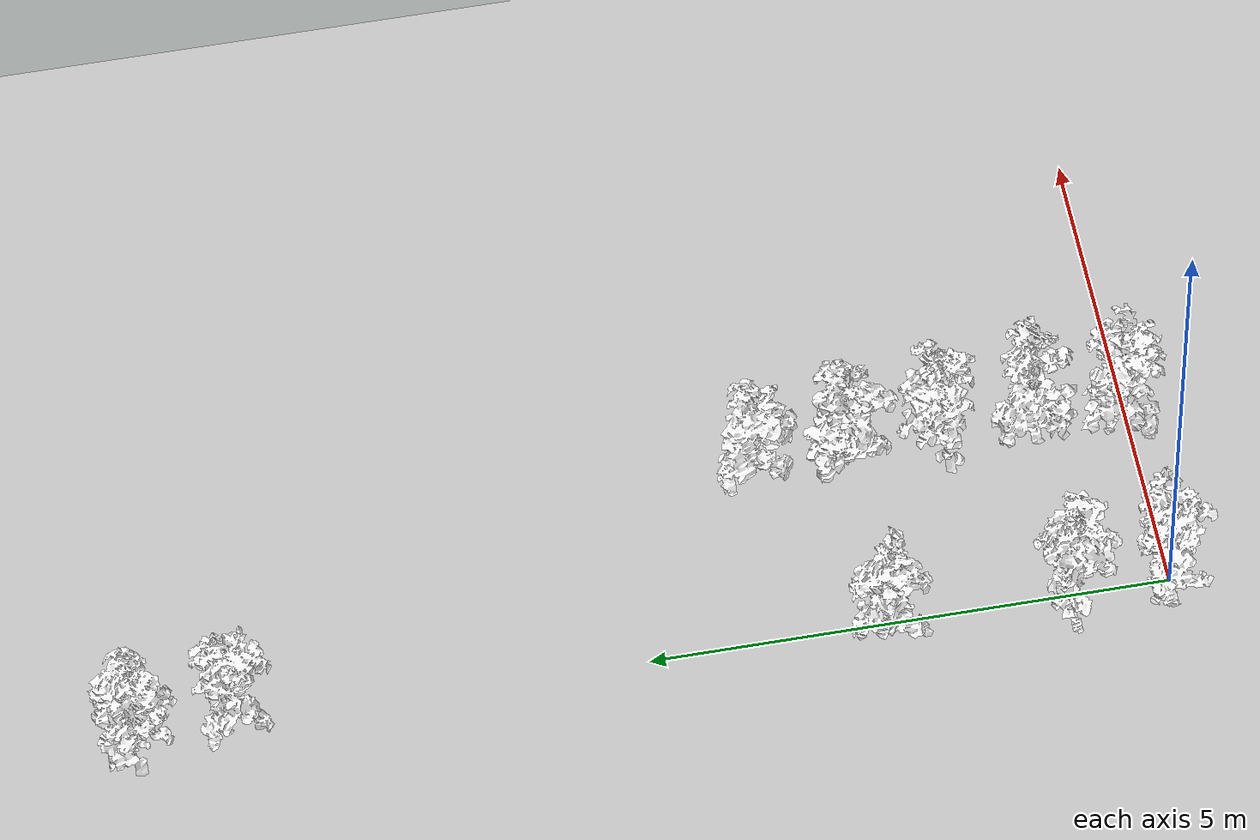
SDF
<sdf version="1.7">
 <world name="field">
  <physics name="1ms" type="ignored">
   <max_step_size>0.001</max_step_size>
   <real_time_factor>1</real_time_factor>
   <real_time_update_rate>1000</real_time_update_rate>
  </physics>
  <plugin name="ignition::gazebo::systems::Physics" filename="ignition-gazebo-physics-system"/>
  <plugin name="ignition::gazebo::systems::UserCommands" filename="ignition-gazebo-user-commands-system"/>
  <plugin name="ignition::gazebo::systems::SceneBroadcaster" filename="ignition-gazebo-scene-broadcaster-system"/>
  <plugin filename="ignition-gazebo-sensors-system" name="ignition::gazebo::systems::Sensors">
   <render_engine>ogre2</render_engine>
  </plugin>
  <scene><ambient>1 1 1 1</ambient><background>0.8 0.8 0.8 1</background><shadows>1</shadows></scene>
  <light name="sun" type="directional">
   <pose>0 0 10 0 -0 0</pose>
   <diffuse>0.8 0.8 0.8 1</diffuse>
   <specular>0.8 0.8 0.8 1</specular>
   <attenuation>
    <range>1000</range>
    <constant>0.9</constant>
    <linear>0.01</linear>
    <quadratic>0.001</quadratic>
   </attenuation>
   <direction>-0.5 0.1 -0.9</direction>
   <spot><inner_angle>0</inner_angle><outer_angle>0</outer_angle><falloff>0</falloff></spot>
  </light>
  <gravity>0 0 -9.8</gravity>
  <magnetic_field>6e-06 2.3e-05 -4.2e-05</magnetic_field>
  <atmosphere type="adiabatic"/>
  <include><uri>ground</uri><name>ground</name><pose>5.0 5.0 0 0 0 0</pose></include>
  <include><uri>tomato_0</uri><name>tomato_0</name></include>
  <include><uri>tomato_1</uri><name>tomato_1</name><pose>0.0 0.9 0 0 0 0</pose></include>
  <include><uri>tomato_3</uri><name>tomato_3</name><pose>0.0 2.7 0 0 0 0</pose></include>
  <include><uri>tomato_10</uri><name>tomato_10</name><pose>0.0 9.0 0 0 0 0</pose></include>
  <include><uri>tomato_11</uri><name>tomato_11</name><pose>0.0 9.9 0 0 0 0</pose></include>
  <include><uri>tomato_12</uri><name>tomato_12</name><pose>2.0 0.0 0 0 0 0</pose></include>
  <include><uri>tomato_13</uri><name>tomato_13</name><pose>2.0 0.9 0 0 0 0</pose></include>
  <include><uri>tomato_14</uri><name>tomato_14</name><pose>2.0 1.8 0 0 0 0</pose></include>
  <include><uri>tomato_15</uri><name>tomato_15</name><pose>2.0 2.7 0 0 0 0</pose></include>
  <include><uri>tomato_16</uri><name>tomato_16</name><pose>2.0 3.6 0 0 0 0</pose></include>
 </world>
</sdf>

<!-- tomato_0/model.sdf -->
<sdf version="1.6">
  <model name="tomato_0">
    <static>true</static>
    <link name="link">
      <collision name="collision">
        <geometry>
          <box>
            <size>.1 .1 1</size>
          </box>
        </geometry>
      </collision>
      <visual name="branch">
        <geometry>
          <mesh>
            <uri>file://tomato_0/meshes/tomato.dae</uri>
            <submesh>
              <name>Branch1</name>
            </submesh>
          </mesh>
        </geometry>
        <material>
          <diffuse>1.0 1.0 1.0</diffuse>
          <pbr>
            <metal>
              <albedo_map>file://tomato_0/materials/textures/AG15brn1.png</albedo_map>
            </metal>
          </pbr>
        </material>
      </visual>
      <visual name="leaf1">
        <geometry>
          <mesh>
            <uri>file://tomato_0/meshes/tomato.dae</uri>
            <submesh>
              <name>Leaf1</name>
            </submesh>
          </mesh>
        </geometry>
        <material>
          <diffuse>1.0 1.0 1.0</diffuse>
          <pbr>
            <metal>
              <albedo_map>file://tomato_0/materials/textures/AG15lef1.png</albedo_map>
            </metal>
          </pbr>
        </material>
      </visual>
      <visual name="leaf2">
        <geometry>
          <mesh>
            <uri>file://tomato_0/meshes/tomato.dae</uri>
            <submesh>
              <name>Leaf2</name>
            </submesh>
          </mesh>
        </geometry>
        <material>
          <diffuse>1.0 1.0 1.0</diffuse>
          <pbr>
            <metal>
              <albedo_map>file://tomato_0/materials/textures/AG15lef2.png</albedo_map>
            </metal>
          </pbr>
        </material>
      </visual>
      <visual name="fruit1">
        <geometry>
          <mesh>
            <uri>file://tomato_0/meshes/tomato.dae</uri>
            <submesh>
              <name>Fruit1</name>
            </submesh>
          </mesh>
        </geometry>
        <material>
          <diffuse>1.0 1.0 1.0</diffuse>
          <pbr>
            <metal>
              <albedo_map>file://tomato_0/materials/textures/AG15frt1.png</albedo_map>
            </metal>
          </pbr>
        </material>
      </visual>
      <visual name="fruit2">
        <geometry>
          <mesh>
            <uri>file://tomato_0/meshes/tomato.dae</uri>
            <submesh>
              <name>Fruit2</name>
            </submesh>
          </mesh>
        </geometry>
        <material>
          <diffuse>1.0 1.0 1.0</diffuse>
          <pbr>
            <metal>
              <albedo_map>file://tomato_0/materials/textures/AG15frt2.png</albedo_map>
            </metal>
          </pbr>
        </material>
      </visual>
      <visual name="fruit3">
        <geometry>
          <mesh>
            <uri>file://tomato_0/meshes/tomato.dae</uri>
            <submesh>
              <name>Fruit3</name>
            </submesh>
          </mesh>
        </geometry>
        <material>
          <diffuse>1.0 1.0 1.0</diffuse>
          <pbr>
            <metal>
              <albedo_map>file://tomato_0/materials/textures/AG15frt3.png</albedo_map>
            </metal>
          </pbr>
        </material>
      </visual>
      <visual name="fruit4">
        <geometry>
          <mesh>
            <uri>file://tomato_0/meshes/tomato.dae</uri>
            <submesh>
              <name>Fruit4</name>
            </submesh>
          </mesh>
        </geometry>
        <material>
          <diffuse>1.0 1.0 1.0</diffuse>
          <pbr>
            <metal>
              <albedo_map>file://tomato_0/materials/textures/AG15frt4.png</albedo_map>
            </metal>
          </pbr>
        </material>
      </visual>
      <visual name="blossom1">
        <geometry>
          <mesh>
            <uri>file://tomato_0/meshes/tomato.dae</uri>
            <submesh>
              <name>Blossom1</name>
            </submesh>
          </mesh>
        </geometry>
        <material>
          <diffuse>1.0 1.0 1.0</diffuse>
          <pbr>
            <metal>
              <albedo_map>file://tomato_0/materials/textures/AG15blo1.png</albedo_map>
            </metal>
          </pbr>
        </material>
      </visual>
      <visual name="blossom2">
        <geometry>
          <mesh>
            <uri>file://tomato_0/meshes/tomato.dae</uri>
            <submesh>
              <name>Blossom2</name>
            </submesh>
          </mesh>
        </geometry>
        <material>
          <diffuse>1.0 1.0 1.0</diffuse>
          <pbr>
            <metal>
              <albedo_map>file://tomato_0/materials/textures/AG15blo2.png</albedo_map>
            </metal>
          </pbr>
        </material>
      </visual>
      <visual name="blossom3">
        <geometry>
          <mesh>
            <uri>file://tomato_0/meshes/tomato.dae</uri>
            <submesh>
              <name>Blossom3</name>
            </submesh>
          </mesh>
        </geometry>
        <material>
          <diffuse>1.0 1.0 1.0</diffuse>
          <pbr>
            <metal>
              <albedo_map>file://tomato_0/materials/textures/AG15blo3.png</albedo_map>
            </metal>
          </pbr>
        </material>
      </visual>
    </link>
  </model>
</sdf>

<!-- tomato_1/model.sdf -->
<sdf version="1.6">
  <model name="tomato_1">
    <static>true</static>
    <link name="link">
      <collision name="collision">
        <geometry>
          <box>
            <size>.1 .1 1</size>
          </box>
        </geometry>
      </collision>
      <visual name="branch">
        <geometry>
          <mesh>
            <uri>file://tomato_1/meshes/tomato.dae</uri>
            <submesh>
              <name>Branch1</name>
            </submesh>
          </mesh>
        </geometry>
        <material>
          <diffuse>1.0 1.0 1.0</diffuse>
          <pbr>
            <metal>
              <albedo_map>file://tomato_1/materials/textures/AG15brn1.png</albedo_map>
            </metal>
          </pbr>
        </material>
      </visual>
      <visual name="leaf1">
        <geometry>
          <mesh>
            <uri>file://tomato_1/meshes/tomato.dae</uri>
            <submesh>
              <name>Leaf1</name>
            </submesh>
          </mesh>
        </geometry>
        <material>
          <diffuse>1.0 1.0 1.0</diffuse>
          <pbr>
            <metal>
              <albedo_map>file://tomato_1/materials/textures/AG15lef1.png</albedo_map>
            </metal>
          </pbr>
        </material>
      </visual>
      <visual name="leaf2">
        <geometry>
          <mesh>
            <uri>file://tomato_1/meshes/tomato.dae</uri>
            <submesh>
              <name>Leaf2</name>
            </submesh>
          </mesh>
        </geometry>
        <material>
          <diffuse>1.0 1.0 1.0</diffuse>
          <pbr>
            <metal>
              <albedo_map>file://tomato_1/materials/textures/AG15lef2.png</albedo_map>
            </metal>
          </pbr>
        </material>
      </visual>
      <visual name="fruit1">
        <geometry>
          <mesh>
            <uri>file://tomato_1/meshes/tomato.dae</uri>
            <submesh>
              <name>Fruit1</name>
            </submesh>
          </mesh>
        </geometry>
        <material>
          <diffuse>1.0 1.0 1.0</diffuse>
          <pbr>
            <metal>
              <albedo_map>file://tomato_1/materials/textures/AG15frt1.png</albedo_map>
            </metal>
          </pbr>
        </material>
      </visual>
      <visual name="fruit2">
        <geometry>
          <mesh>
            <uri>file://tomato_1/meshes/tomato.dae</uri>
            <submesh>
              <name>Fruit2</name>
            </submesh>
          </mesh>
        </geometry>
        <material>
          <diffuse>1.0 1.0 1.0</diffuse>
          <pbr>
            <metal>
              <albedo_map>file://tomato_1/materials/textures/AG15frt2.png</albedo_map>
            </metal>
          </pbr>
        </material>
      </visual>
      <visual name="fruit3">
        <geometry>
          <mesh>
            <uri>file://tomato_1/meshes/tomato.dae</uri>
            <submesh>
              <name>Fruit3</name>
            </submesh>
          </mesh>
        </geometry>
        <material>
          <diffuse>1.0 1.0 1.0</diffuse>
          <pbr>
            <metal>
              <albedo_map>file://tomato_1/materials/textures/AG15frt3.png</albedo_map>
            </metal>
          </pbr>
        </material>
      </visual>
      <visual name="fruit4">
        <geometry>
          <mesh>
            <uri>file://tomato_1/meshes/tomato.dae</uri>
            <submesh>
              <name>Fruit4</name>
            </submesh>
          </mesh>
        </geometry>
        <material>
          <diffuse>1.0 1.0 1.0</diffuse>
          <pbr>
            <metal>
              <albedo_map>file://tomato_1/materials/textures/AG15frt4.png</albedo_map>
            </metal>
          </pbr>
        </material>
      </visual>
      <visual name="blossom1">
        <geometry>
          <mesh>
            <uri>file://tomato_1/meshes/tomato.dae</uri>
            <submesh>
              <name>Blossom1</name>
            </submesh>
          </mesh>
        </geometry>
        <material>
          <diffuse>1.0 1.0 1.0</diffuse>
          <pbr>
            <metal>
              <albedo_map>file://tomato_1/materials/textures/AG15blo1.png</albedo_map>
            </metal>
          </pbr>
        </material>
      </visual>
      <visual name="blossom2">
        <geometry>
          <mesh>
            <uri>file://tomato_1/meshes/tomato.dae</uri>
            <submesh>
              <name>Blossom2</name>
            </submesh>
          </mesh>
        </geometry>
        <material>
          <diffuse>1.0 1.0 1.0</diffuse>
          <pbr>
            <metal>
              <albedo_map>file://tomato_1/materials/textures/AG15blo2.png</albedo_map>
            </metal>
          </pbr>
        </material>
      </visual>
      <visual name="blossom3">
        <geometry>
          <mesh>
            <uri>file://tomato_1/meshes/tomato.dae</uri>
            <submesh>
              <name>Blossom3</name>
            </submesh>
          </mesh>
        </geometry>
        <material>
          <diffuse>1.0 1.0 1.0</diffuse>
          <pbr>
            <metal>
              <albedo_map>file://tomato_1/materials/textures/AG15blo3.png</albedo_map>
            </metal>
          </pbr>
        </material>
      </visual>
    </link>
  </model>
</sdf>

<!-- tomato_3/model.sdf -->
<sdf version="1.6">
  <model name="tomato_3">
    <static>true</static>
    <link name="link">
      <collision name="collision">
        <geometry>
          <box>
            <size>.1 .1 1</size>
          </box>
        </geometry>
      </collision>
      <visual name="branch">
        <geometry>
          <mesh>
            <uri>file://tomato_3/meshes/tomato.dae</uri>
            <submesh>
              <name>Branch1</name>
            </submesh>
          </mesh>
        </geometry>
        <material>
          <diffuse>1.0 1.0 1.0</diffuse>
          <pbr>
            <metal>
              <albedo_map>file://tomato_3/materials/textures/AG15brn1.png</albedo_map>
            </metal>
          </pbr>
        </material>
      </visual>
      <visual name="leaf1">
        <geometry>
          <mesh>
            <uri>file://tomato_3/meshes/tomato.dae</uri>
            <submesh>
              <name>Leaf1</name>
            </submesh>
          </mesh>
        </geometry>
        <material>
          <diffuse>1.0 1.0 1.0</diffuse>
          <pbr>
            <metal>
              <albedo_map>file://tomato_3/materials/textures/AG15lef1.png</albedo_map>
            </metal>
          </pbr>
        </material>
      </visual>
      <visual name="leaf2">
        <geometry>
          <mesh>
            <uri>file://tomato_3/meshes/tomato.dae</uri>
            <submesh>
              <name>Leaf2</name>
            </submesh>
          </mesh>
        </geometry>
        <material>
          <diffuse>1.0 1.0 1.0</diffuse>
          <pbr>
            <metal>
              <albedo_map>file://tomato_3/materials/textures/AG15lef2.png</albedo_map>
            </metal>
          </pbr>
        </material>
      </visual>
      <visual name="fruit1">
        <geometry>
          <mesh>
            <uri>file://tomato_3/meshes/tomato.dae</uri>
            <submesh>
              <name>Fruit1</name>
            </submesh>
          </mesh>
        </geometry>
        <material>
          <diffuse>1.0 1.0 1.0</diffuse>
          <pbr>
            <metal>
              <albedo_map>file://tomato_3/materials/textures/AG15frt1.png</albedo_map>
            </metal>
          </pbr>
        </material>
      </visual>
      <visual name="fruit2">
        <geometry>
          <mesh>
            <uri>file://tomato_3/meshes/tomato.dae</uri>
            <submesh>
              <name>Fruit2</name>
            </submesh>
          </mesh>
        </geometry>
        <material>
          <diffuse>1.0 1.0 1.0</diffuse>
          <pbr>
            <metal>
              <albedo_map>file://tomato_3/materials/textures/AG15frt2.png</albedo_map>
            </metal>
          </pbr>
        </material>
      </visual>
      <visual name="fruit3">
        <geometry>
          <mesh>
            <uri>file://tomato_3/meshes/tomato.dae</uri>
            <submesh>
              <name>Fruit3</name>
            </submesh>
          </mesh>
        </geometry>
        <material>
          <diffuse>1.0 1.0 1.0</diffuse>
          <pbr>
            <metal>
              <albedo_map>file://tomato_3/materials/textures/AG15frt3.png</albedo_map>
            </metal>
          </pbr>
        </material>
      </visual>
      <visual name="fruit4">
        <geometry>
          <mesh>
            <uri>file://tomato_3/meshes/tomato.dae</uri>
            <submesh>
              <name>Fruit4</name>
            </submesh>
          </mesh>
        </geometry>
        <material>
          <diffuse>1.0 1.0 1.0</diffuse>
          <pbr>
            <metal>
              <albedo_map>file://tomato_3/materials/textures/AG15frt4.png</albedo_map>
            </metal>
          </pbr>
        </material>
      </visual>
      <visual name="blossom1">
        <geometry>
          <mesh>
            <uri>file://tomato_3/meshes/tomato.dae</uri>
            <submesh>
              <name>Blossom1</name>
            </submesh>
          </mesh>
        </geometry>
        <material>
          <diffuse>1.0 1.0 1.0</diffuse>
          <pbr>
            <metal>
              <albedo_map>file://tomato_3/materials/textures/AG15blo1.png</albedo_map>
            </metal>
          </pbr>
        </material>
      </visual>
      <visual name="blossom2">
        <geometry>
          <mesh>
            <uri>file://tomato_3/meshes/tomato.dae</uri>
            <submesh>
              <name>Blossom2</name>
            </submesh>
          </mesh>
        </geometry>
        <material>
          <diffuse>1.0 1.0 1.0</diffuse>
          <pbr>
            <metal>
              <albedo_map>file://tomato_3/materials/textures/AG15blo2.png</albedo_map>
            </metal>
          </pbr>
        </material>
      </visual>
      <visual name="blossom3">
        <geometry>
          <mesh>
            <uri>file://tomato_3/meshes/tomato.dae</uri>
            <submesh>
              <name>Blossom3</name>
            </submesh>
          </mesh>
        </geometry>
        <material>
          <diffuse>1.0 1.0 1.0</diffuse>
          <pbr>
            <metal>
              <albedo_map>file://tomato_3/materials/textures/AG15blo3.png</albedo_map>
            </metal>
          </pbr>
        </material>
      </visual>
    </link>
  </model>
</sdf>

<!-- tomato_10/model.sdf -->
<sdf version="1.6">
  <model name="tomato_10">
    <static>true</static>
    <link name="link">
      <collision name="collision">
        <geometry>
          <box>
            <size>.1 .1 1</size>
          </box>
        </geometry>
      </collision>
      <visual name="branch">
        <geometry>
          <mesh>
            <uri>file://tomato_10/meshes/tomato.dae</uri>
            <submesh>
              <name>Branch1</name>
            </submesh>
          </mesh>
        </geometry>
        <material>
          <diffuse>1.0 1.0 1.0</diffuse>
          <pbr>
            <metal>
              <albedo_map>file://tomato_10/materials/textures/AG15brn1.png</albedo_map>
            </metal>
          </pbr>
        </material>
      </visual>
      <visual name="leaf1">
        <geometry>
          <mesh>
            <uri>file://tomato_10/meshes/tomato.dae</uri>
            <submesh>
              <name>Leaf1</name>
            </submesh>
          </mesh>
        </geometry>
        <material>
          <diffuse>1.0 1.0 1.0</diffuse>
          <pbr>
            <metal>
              <albedo_map>file://tomato_10/materials/textures/AG15lef1.png</albedo_map>
            </metal>
          </pbr>
        </material>
      </visual>
      <visual name="leaf2">
        <geometry>
          <mesh>
            <uri>file://tomato_10/meshes/tomato.dae</uri>
            <submesh>
              <name>Leaf2</name>
            </submesh>
          </mesh>
        </geometry>
        <material>
          <diffuse>1.0 1.0 1.0</diffuse>
          <pbr>
            <metal>
              <albedo_map>file://tomato_10/materials/textures/AG15lef2.png</albedo_map>
            </metal>
          </pbr>
        </material>
      </visual>
      <visual name="fruit1">
        <geometry>
          <mesh>
            <uri>file://tomato_10/meshes/tomato.dae</uri>
            <submesh>
              <name>Fruit1</name>
            </submesh>
          </mesh>
        </geometry>
        <material>
          <diffuse>1.0 1.0 1.0</diffuse>
          <pbr>
            <metal>
              <albedo_map>file://tomato_10/materials/textures/AG15frt1.png</albedo_map>
            </metal>
          </pbr>
        </material>
      </visual>
      <visual name="fruit2">
        <geometry>
          <mesh>
            <uri>file://tomato_10/meshes/tomato.dae</uri>
            <submesh>
              <name>Fruit2</name>
            </submesh>
          </mesh>
        </geometry>
        <material>
          <diffuse>1.0 1.0 1.0</diffuse>
          <pbr>
            <metal>
              <albedo_map>file://tomato_10/materials/textures/AG15frt2.png</albedo_map>
            </metal>
          </pbr>
        </material>
      </visual>
      <visual name="fruit3">
        <geometry>
          <mesh>
            <uri>file://tomato_10/meshes/tomato.dae</uri>
            <submesh>
              <name>Fruit3</name>
            </submesh>
          </mesh>
        </geometry>
        <material>
          <diffuse>1.0 1.0 1.0</diffuse>
          <pbr>
            <metal>
              <albedo_map>file://tomato_10/materials/textures/AG15frt3.png</albedo_map>
            </metal>
          </pbr>
        </material>
      </visual>
      <visual name="fruit4">
        <geometry>
          <mesh>
            <uri>file://tomato_10/meshes/tomato.dae</uri>
            <submesh>
              <name>Fruit4</name>
            </submesh>
          </mesh>
        </geometry>
        <material>
          <diffuse>1.0 1.0 1.0</diffuse>
          <pbr>
            <metal>
              <albedo_map>file://tomato_10/materials/textures/AG15frt4.png</albedo_map>
            </metal>
          </pbr>
        </material>
      </visual>
      <visual name="blossom1">
        <geometry>
          <mesh>
            <uri>file://tomato_10/meshes/tomato.dae</uri>
            <submesh>
              <name>Blossom1</name>
            </submesh>
          </mesh>
        </geometry>
        <material>
          <diffuse>1.0 1.0 1.0</diffuse>
          <pbr>
            <metal>
              <albedo_map>file://tomato_10/materials/textures/AG15blo1.png</albedo_map>
            </metal>
          </pbr>
        </material>
      </visual>
      <visual name="blossom2">
        <geometry>
          <mesh>
            <uri>file://tomato_10/meshes/tomato.dae</uri>
            <submesh>
              <name>Blossom2</name>
            </submesh>
          </mesh>
        </geometry>
        <material>
          <diffuse>1.0 1.0 1.0</diffuse>
          <pbr>
            <metal>
              <albedo_map>file://tomato_10/materials/textures/AG15blo2.png</albedo_map>
            </metal>
          </pbr>
        </material>
      </visual>
      <visual name="blossom3">
        <geometry>
          <mesh>
            <uri>file://tomato_10/meshes/tomato.dae</uri>
            <submesh>
              <name>Blossom3</name>
            </submesh>
          </mesh>
        </geometry>
        <material>
          <diffuse>1.0 1.0 1.0</diffuse>
          <pbr>
            <metal>
              <albedo_map>file://tomato_10/materials/textures/AG15blo3.png</albedo_map>
            </metal>
          </pbr>
        </material>
      </visual>
    </link>
  </model>
</sdf>

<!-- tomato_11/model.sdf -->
<sdf version="1.6">
  <model name="tomato_11">
    <static>true</static>
    <link name="link">
      <collision name="collision">
        <geometry>
          <box>
            <size>.1 .1 1</size>
          </box>
        </geometry>
      </collision>
      <visual name="branch">
        <geometry>
          <mesh>
            <uri>file://tomato_11/meshes/tomato.dae</uri>
            <submesh>
              <name>Branch1</name>
            </submesh>
          </mesh>
        </geometry>
        <material>
          <diffuse>1.0 1.0 1.0</diffuse>
          <pbr>
            <metal>
              <albedo_map>file://tomato_11/materials/textures/AG15brn1.png</albedo_map>
            </metal>
          </pbr>
        </material>
      </visual>
      <visual name="leaf1">
        <geometry>
          <mesh>
            <uri>file://tomato_11/meshes/tomato.dae</uri>
            <submesh>
              <name>Leaf1</name>
            </submesh>
          </mesh>
        </geometry>
        <material>
          <diffuse>1.0 1.0 1.0</diffuse>
          <pbr>
            <metal>
              <albedo_map>file://tomato_11/materials/textures/AG15lef1.png</albedo_map>
            </metal>
          </pbr>
        </material>
      </visual>
      <visual name="leaf2">
        <geometry>
          <mesh>
            <uri>file://tomato_11/meshes/tomato.dae</uri>
            <submesh>
              <name>Leaf2</name>
            </submesh>
          </mesh>
        </geometry>
        <material>
          <diffuse>1.0 1.0 1.0</diffuse>
          <pbr>
            <metal>
              <albedo_map>file://tomato_11/materials/textures/AG15lef2.png</albedo_map>
            </metal>
          </pbr>
        </material>
      </visual>
      <visual name="fruit1">
        <geometry>
          <mesh>
            <uri>file://tomato_11/meshes/tomato.dae</uri>
            <submesh>
              <name>Fruit1</name>
            </submesh>
          </mesh>
        </geometry>
        <material>
          <diffuse>1.0 1.0 1.0</diffuse>
          <pbr>
            <metal>
              <albedo_map>file://tomato_11/materials/textures/AG15frt1.png</albedo_map>
            </metal>
          </pbr>
        </material>
      </visual>
      <visual name="fruit2">
        <geometry>
          <mesh>
            <uri>file://tomato_11/meshes/tomato.dae</uri>
            <submesh>
              <name>Fruit2</name>
            </submesh>
          </mesh>
        </geometry>
        <material>
          <diffuse>1.0 1.0 1.0</diffuse>
          <pbr>
            <metal>
              <albedo_map>file://tomato_11/materials/textures/AG15frt2.png</albedo_map>
            </metal>
          </pbr>
        </material>
      </visual>
      <visual name="fruit3">
        <geometry>
          <mesh>
            <uri>file://tomato_11/meshes/tomato.dae</uri>
            <submesh>
              <name>Fruit3</name>
            </submesh>
          </mesh>
        </geometry>
        <material>
          <diffuse>1.0 1.0 1.0</diffuse>
          <pbr>
            <metal>
              <albedo_map>file://tomato_11/materials/textures/AG15frt3.png</albedo_map>
            </metal>
          </pbr>
        </material>
      </visual>
      <visual name="fruit4">
        <geometry>
          <mesh>
            <uri>file://tomato_11/meshes/tomato.dae</uri>
            <submesh>
              <name>Fruit4</name>
            </submesh>
          </mesh>
        </geometry>
        <material>
          <diffuse>1.0 1.0 1.0</diffuse>
          <pbr>
            <metal>
              <albedo_map>file://tomato_11/materials/textures/AG15frt4.png</albedo_map>
            </metal>
          </pbr>
        </material>
      </visual>
      <visual name="blossom1">
        <geometry>
          <mesh>
            <uri>file://tomato_11/meshes/tomato.dae</uri>
            <submesh>
              <name>Blossom1</name>
            </submesh>
          </mesh>
        </geometry>
        <material>
          <diffuse>1.0 1.0 1.0</diffuse>
          <pbr>
            <metal>
              <albedo_map>file://tomato_11/materials/textures/AG15blo1.png</albedo_map>
            </metal>
          </pbr>
        </material>
      </visual>
      <visual name="blossom2">
        <geometry>
          <mesh>
            <uri>file://tomato_11/meshes/tomato.dae</uri>
            <submesh>
              <name>Blossom2</name>
            </submesh>
          </mesh>
        </geometry>
        <material>
          <diffuse>1.0 1.0 1.0</diffuse>
          <pbr>
            <metal>
              <albedo_map>file://tomato_11/materials/textures/AG15blo2.png</albedo_map>
            </metal>
          </pbr>
        </material>
      </visual>
      <visual name="blossom3">
        <geometry>
          <mesh>
            <uri>file://tomato_11/meshes/tomato.dae</uri>
            <submesh>
              <name>Blossom3</name>
            </submesh>
          </mesh>
        </geometry>
        <material>
          <diffuse>1.0 1.0 1.0</diffuse>
          <pbr>
            <metal>
              <albedo_map>file://tomato_11/materials/textures/AG15blo3.png</albedo_map>
            </metal>
          </pbr>
        </material>
      </visual>
    </link>
  </model>
</sdf>

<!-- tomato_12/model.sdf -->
<sdf version="1.6">
  <model name="tomato_12">
    <static>true</static>
    <link name="link">
      <collision name="collision">
        <geometry>
          <box>
            <size>.1 .1 1</size>
          </box>
        </geometry>
      </collision>
      <visual name="branch">
        <geometry>
          <mesh>
            <uri>file://tomato_12/meshes/tomato.dae</uri>
            <submesh>
              <name>Branch1</name>
            </submesh>
          </mesh>
        </geometry>
        <material>
          <diffuse>1.0 1.0 1.0</diffuse>
          <pbr>
            <metal>
              <albedo_map>file://tomato_12/materials/textures/AG15brn1.png</albedo_map>
            </metal>
          </pbr>
        </material>
      </visual>
      <visual name="leaf1">
        <geometry>
          <mesh>
            <uri>file://tomato_12/meshes/tomato.dae</uri>
            <submesh>
              <name>Leaf1</name>
            </submesh>
          </mesh>
        </geometry>
        <material>
          <diffuse>1.0 1.0 1.0</diffuse>
          <pbr>
            <metal>
              <albedo_map>file://tomato_12/materials/textures/AG15lef1.png</albedo_map>
            </metal>
          </pbr>
        </material>
      </visual>
      <visual name="leaf2">
        <geometry>
          <mesh>
            <uri>file://tomato_12/meshes/tomato.dae</uri>
            <submesh>
              <name>Leaf2</name>
            </submesh>
          </mesh>
        </geometry>
        <material>
          <diffuse>1.0 1.0 1.0</diffuse>
          <pbr>
            <metal>
              <albedo_map>file://tomato_12/materials/textures/AG15lef2.png</albedo_map>
            </metal>
          </pbr>
        </material>
      </visual>
      <visual name="fruit1">
        <geometry>
          <mesh>
            <uri>file://tomato_12/meshes/tomato.dae</uri>
            <submesh>
              <name>Fruit1</name>
            </submesh>
          </mesh>
        </geometry>
        <material>
          <diffuse>1.0 1.0 1.0</diffuse>
          <pbr>
            <metal>
              <albedo_map>file://tomato_12/materials/textures/AG15frt1.png</albedo_map>
            </metal>
          </pbr>
        </material>
      </visual>
      <visual name="fruit2">
        <geometry>
          <mesh>
            <uri>file://tomato_12/meshes/tomato.dae</uri>
            <submesh>
              <name>Fruit2</name>
            </submesh>
          </mesh>
        </geometry>
        <material>
          <diffuse>1.0 1.0 1.0</diffuse>
          <pbr>
            <metal>
              <albedo_map>file://tomato_12/materials/textures/AG15frt2.png</albedo_map>
            </metal>
          </pbr>
        </material>
      </visual>
      <visual name="fruit3">
        <geometry>
          <mesh>
            <uri>file://tomato_12/meshes/tomato.dae</uri>
            <submesh>
              <name>Fruit3</name>
            </submesh>
          </mesh>
        </geometry>
        <material>
          <diffuse>1.0 1.0 1.0</diffuse>
          <pbr>
            <metal>
              <albedo_map>file://tomato_12/materials/textures/AG15frt3.png</albedo_map>
            </metal>
          </pbr>
        </material>
      </visual>
      <visual name="fruit4">
        <geometry>
          <mesh>
            <uri>file://tomato_12/meshes/tomato.dae</uri>
            <submesh>
              <name>Fruit4</name>
            </submesh>
          </mesh>
        </geometry>
        <material>
          <diffuse>1.0 1.0 1.0</diffuse>
          <pbr>
            <metal>
              <albedo_map>file://tomato_12/materials/textures/AG15frt4.png</albedo_map>
            </metal>
          </pbr>
        </material>
      </visual>
      <visual name="blossom1">
        <geometry>
          <mesh>
            <uri>file://tomato_12/meshes/tomato.dae</uri>
            <submesh>
              <name>Blossom1</name>
            </submesh>
          </mesh>
        </geometry>
        <material>
          <diffuse>1.0 1.0 1.0</diffuse>
          <pbr>
            <metal>
              <albedo_map>file://tomato_12/materials/textures/AG15blo1.png</albedo_map>
            </metal>
          </pbr>
        </material>
      </visual>
      <visual name="blossom2">
        <geometry>
          <mesh>
            <uri>file://tomato_12/meshes/tomato.dae</uri>
            <submesh>
              <name>Blossom2</name>
            </submesh>
          </mesh>
        </geometry>
        <material>
          <diffuse>1.0 1.0 1.0</diffuse>
          <pbr>
            <metal>
              <albedo_map>file://tomato_12/materials/textures/AG15blo2.png</albedo_map>
            </metal>
          </pbr>
        </material>
      </visual>
      <visual name="blossom3">
        <geometry>
          <mesh>
            <uri>file://tomato_12/meshes/tomato.dae</uri>
            <submesh>
              <name>Blossom3</name>
            </submesh>
          </mesh>
        </geometry>
        <material>
          <diffuse>1.0 1.0 1.0</diffuse>
          <pbr>
            <metal>
              <albedo_map>file://tomato_12/materials/textures/AG15blo3.png</albedo_map>
            </metal>
          </pbr>
        </material>
      </visual>
    </link>
  </model>
</sdf>

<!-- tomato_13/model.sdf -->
<sdf version="1.6">
  <model name="tomato_13">
    <static>true</static>
    <link name="link">
      <collision name="collision">
        <geometry>
          <box>
            <size>.1 .1 1</size>
          </box>
        </geometry>
      </collision>
      <visual name="branch">
        <geometry>
          <mesh>
            <uri>file://tomato_13/meshes/tomato.dae</uri>
            <submesh>
              <name>Branch1</name>
            </submesh>
          </mesh>
        </geometry>
        <material>
          <diffuse>1.0 1.0 1.0</diffuse>
          <pbr>
            <metal>
              <albedo_map>file://tomato_13/materials/textures/AG15brn1.png</albedo_map>
            </metal>
          </pbr>
        </material>
      </visual>
      <visual name="leaf1">
        <geometry>
          <mesh>
            <uri>file://tomato_13/meshes/tomato.dae</uri>
            <submesh>
              <name>Leaf1</name>
            </submesh>
          </mesh>
        </geometry>
        <material>
          <diffuse>1.0 1.0 1.0</diffuse>
          <pbr>
            <metal>
              <albedo_map>file://tomato_13/materials/textures/AG15lef1.png</albedo_map>
            </metal>
          </pbr>
        </material>
      </visual>
      <visual name="leaf2">
        <geometry>
          <mesh>
            <uri>file://tomato_13/meshes/tomato.dae</uri>
            <submesh>
              <name>Leaf2</name>
            </submesh>
          </mesh>
        </geometry>
        <material>
          <diffuse>1.0 1.0 1.0</diffuse>
          <pbr>
            <metal>
              <albedo_map>file://tomato_13/materials/textures/AG15lef2.png</albedo_map>
            </metal>
          </pbr>
        </material>
      </visual>
      <visual name="fruit1">
        <geometry>
          <mesh>
            <uri>file://tomato_13/meshes/tomato.dae</uri>
            <submesh>
              <name>Fruit1</name>
            </submesh>
          </mesh>
        </geometry>
        <material>
          <diffuse>1.0 1.0 1.0</diffuse>
          <pbr>
            <metal>
              <albedo_map>file://tomato_13/materials/textures/AG15frt1.png</albedo_map>
            </metal>
          </pbr>
        </material>
      </visual>
      <visual name="fruit2">
        <geometry>
          <mesh>
            <uri>file://tomato_13/meshes/tomato.dae</uri>
            <submesh>
              <name>Fruit2</name>
            </submesh>
          </mesh>
        </geometry>
        <material>
          <diffuse>1.0 1.0 1.0</diffuse>
          <pbr>
            <metal>
              <albedo_map>file://tomato_13/materials/textures/AG15frt2.png</albedo_map>
            </metal>
          </pbr>
        </material>
      </visual>
      <visual name="fruit3">
        <geometry>
          <mesh>
            <uri>file://tomato_13/meshes/tomato.dae</uri>
            <submesh>
              <name>Fruit3</name>
            </submesh>
          </mesh>
        </geometry>
        <material>
          <diffuse>1.0 1.0 1.0</diffuse>
          <pbr>
            <metal>
              <albedo_map>file://tomato_13/materials/textures/AG15frt3.png</albedo_map>
            </metal>
          </pbr>
        </material>
      </visual>
      <visual name="fruit4">
        <geometry>
          <mesh>
            <uri>file://tomato_13/meshes/tomato.dae</uri>
            <submesh>
              <name>Fruit4</name>
            </submesh>
          </mesh>
        </geometry>
        <material>
          <diffuse>1.0 1.0 1.0</diffuse>
          <pbr>
            <metal>
              <albedo_map>file://tomato_13/materials/textures/AG15frt4.png</albedo_map>
            </metal>
          </pbr>
        </material>
      </visual>
      <visual name="blossom1">
        <geometry>
          <mesh>
            <uri>file://tomato_13/meshes/tomato.dae</uri>
            <submesh>
              <name>Blossom1</name>
            </submesh>
          </mesh>
        </geometry>
        <material>
          <diffuse>1.0 1.0 1.0</diffuse>
          <pbr>
            <metal>
              <albedo_map>file://tomato_13/materials/textures/AG15blo1.png</albedo_map>
            </metal>
          </pbr>
        </material>
      </visual>
      <visual name="blossom2">
        <geometry>
          <mesh>
            <uri>file://tomato_13/meshes/tomato.dae</uri>
            <submesh>
              <name>Blossom2</name>
            </submesh>
          </mesh>
        </geometry>
        <material>
          <diffuse>1.0 1.0 1.0</diffuse>
          <pbr>
            <metal>
              <albedo_map>file://tomato_13/materials/textures/AG15blo2.png</albedo_map>
            </metal>
          </pbr>
        </material>
      </visual>
      <visual name="blossom3">
        <geometry>
          <mesh>
            <uri>file://tomato_13/meshes/tomato.dae</uri>
            <submesh>
              <name>Blossom3</name>
            </submesh>
          </mesh>
        </geometry>
        <material>
          <diffuse>1.0 1.0 1.0</diffuse>
          <pbr>
            <metal>
              <albedo_map>file://tomato_13/materials/textures/AG15blo3.png</albedo_map>
            </metal>
          </pbr>
        </material>
      </visual>
    </link>
  </model>
</sdf>

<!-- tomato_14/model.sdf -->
<sdf version="1.6">
  <model name="tomato_14">
    <static>true</static>
    <link name="link">
      <collision name="collision">
        <geometry>
          <box>
            <size>.1 .1 1</size>
          </box>
        </geometry>
      </collision>
      <visual name="branch">
        <geometry>
          <mesh>
            <uri>file://tomato_14/meshes/tomato.dae</uri>
            <submesh>
              <name>Branch1</name>
            </submesh>
          </mesh>
        </geometry>
        <material>
          <diffuse>1.0 1.0 1.0</diffuse>
          <pbr>
            <metal>
              <albedo_map>file://tomato_14/materials/textures/AG15brn1.png</albedo_map>
            </metal>
          </pbr>
        </material>
      </visual>
      <visual name="leaf1">
        <geometry>
          <mesh>
            <uri>file://tomato_14/meshes/tomato.dae</uri>
            <submesh>
              <name>Leaf1</name>
            </submesh>
          </mesh>
        </geometry>
        <material>
          <diffuse>1.0 1.0 1.0</diffuse>
          <pbr>
            <metal>
              <albedo_map>file://tomato_14/materials/textures/AG15lef1.png</albedo_map>
            </metal>
          </pbr>
        </material>
      </visual>
      <visual name="leaf2">
        <geometry>
          <mesh>
            <uri>file://tomato_14/meshes/tomato.dae</uri>
            <submesh>
              <name>Leaf2</name>
            </submesh>
          </mesh>
        </geometry>
        <material>
          <diffuse>1.0 1.0 1.0</diffuse>
          <pbr>
            <metal>
              <albedo_map>file://tomato_14/materials/textures/AG15lef2.png</albedo_map>
            </metal>
          </pbr>
        </material>
      </visual>
      <visual name="fruit1">
        <geometry>
          <mesh>
            <uri>file://tomato_14/meshes/tomato.dae</uri>
            <submesh>
              <name>Fruit1</name>
            </submesh>
          </mesh>
        </geometry>
        <material>
          <diffuse>1.0 1.0 1.0</diffuse>
          <pbr>
            <metal>
              <albedo_map>file://tomato_14/materials/textures/AG15frt1.png</albedo_map>
            </metal>
          </pbr>
        </material>
      </visual>
      <visual name="fruit2">
        <geometry>
          <mesh>
            <uri>file://tomato_14/meshes/tomato.dae</uri>
            <submesh>
              <name>Fruit2</name>
            </submesh>
          </mesh>
        </geometry>
        <material>
          <diffuse>1.0 1.0 1.0</diffuse>
          <pbr>
            <metal>
              <albedo_map>file://tomato_14/materials/textures/AG15frt2.png</albedo_map>
            </metal>
          </pbr>
        </material>
      </visual>
      <visual name="fruit3">
        <geometry>
          <mesh>
            <uri>file://tomato_14/meshes/tomato.dae</uri>
            <submesh>
              <name>Fruit3</name>
            </submesh>
          </mesh>
        </geometry>
        <material>
          <diffuse>1.0 1.0 1.0</diffuse>
          <pbr>
            <metal>
              <albedo_map>file://tomato_14/materials/textures/AG15frt3.png</albedo_map>
            </metal>
          </pbr>
        </material>
      </visual>
      <visual name="fruit4">
        <geometry>
          <mesh>
            <uri>file://tomato_14/meshes/tomato.dae</uri>
            <submesh>
              <name>Fruit4</name>
            </submesh>
          </mesh>
        </geometry>
        <material>
          <diffuse>1.0 1.0 1.0</diffuse>
          <pbr>
            <metal>
              <albedo_map>file://tomato_14/materials/textures/AG15frt4.png</albedo_map>
            </metal>
          </pbr>
        </material>
      </visual>
      <visual name="blossom1">
        <geometry>
          <mesh>
            <uri>file://tomato_14/meshes/tomato.dae</uri>
            <submesh>
              <name>Blossom1</name>
            </submesh>
          </mesh>
        </geometry>
        <material>
          <diffuse>1.0 1.0 1.0</diffuse>
          <pbr>
            <metal>
              <albedo_map>file://tomato_14/materials/textures/AG15blo1.png</albedo_map>
            </metal>
          </pbr>
        </material>
      </visual>
      <visual name="blossom2">
        <geometry>
          <mesh>
            <uri>file://tomato_14/meshes/tomato.dae</uri>
            <submesh>
              <name>Blossom2</name>
            </submesh>
          </mesh>
        </geometry>
        <material>
          <diffuse>1.0 1.0 1.0</diffuse>
          <pbr>
            <metal>
              <albedo_map>file://tomato_14/materials/textures/AG15blo2.png</albedo_map>
            </metal>
          </pbr>
        </material>
      </visual>
      <visual name="blossom3">
        <geometry>
          <mesh>
            <uri>file://tomato_14/meshes/tomato.dae</uri>
            <submesh>
              <name>Blossom3</name>
            </submesh>
          </mesh>
        </geometry>
        <material>
          <diffuse>1.0 1.0 1.0</diffuse>
          <pbr>
            <metal>
              <albedo_map>file://tomato_14/materials/textures/AG15blo3.png</albedo_map>
            </metal>
          </pbr>
        </material>
      </visual>
    </link>
  </model>
</sdf>

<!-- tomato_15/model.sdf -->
<sdf version="1.6">
  <model name="tomato_15">
    <static>true</static>
    <link name="link">
      <collision name="collision">
        <geometry>
          <box>
            <size>.1 .1 1</size>
          </box>
        </geometry>
      </collision>
      <visual name="branch">
        <geometry>
          <mesh>
            <uri>file://tomato_15/meshes/tomato.dae</uri>
            <submesh>
              <name>Branch1</name>
            </submesh>
          </mesh>
        </geometry>
        <material>
          <diffuse>1.0 1.0 1.0</diffuse>
          <pbr>
            <metal>
              <albedo_map>file://tomato_15/materials/textures/AG15brn1.png</albedo_map>
            </metal>
          </pbr>
        </material>
      </visual>
      <visual name="leaf1">
        <geometry>
          <mesh>
            <uri>file://tomato_15/meshes/tomato.dae</uri>
            <submesh>
              <name>Leaf1</name>
            </submesh>
          </mesh>
        </geometry>
        <material>
          <diffuse>1.0 1.0 1.0</diffuse>
          <pbr>
            <metal>
              <albedo_map>file://tomato_15/materials/textures/AG15lef1.png</albedo_map>
            </metal>
          </pbr>
        </material>
      </visual>
      <visual name="leaf2">
        <geometry>
          <mesh>
            <uri>file://tomato_15/meshes/tomato.dae</uri>
            <submesh>
              <name>Leaf2</name>
            </submesh>
          </mesh>
        </geometry>
        <material>
          <diffuse>1.0 1.0 1.0</diffuse>
          <pbr>
            <metal>
              <albedo_map>file://tomato_15/materials/textures/AG15lef2.png</albedo_map>
            </metal>
          </pbr>
        </material>
      </visual>
      <visual name="fruit1">
        <geometry>
          <mesh>
            <uri>file://tomato_15/meshes/tomato.dae</uri>
            <submesh>
              <name>Fruit1</name>
            </submesh>
          </mesh>
        </geometry>
        <material>
          <diffuse>1.0 1.0 1.0</diffuse>
          <pbr>
            <metal>
              <albedo_map>file://tomato_15/materials/textures/AG15frt1.png</albedo_map>
            </metal>
          </pbr>
        </material>
      </visual>
      <visual name="fruit2">
        <geometry>
          <mesh>
            <uri>file://tomato_15/meshes/tomato.dae</uri>
            <submesh>
              <name>Fruit2</name>
            </submesh>
          </mesh>
        </geometry>
        <material>
          <diffuse>1.0 1.0 1.0</diffuse>
          <pbr>
            <metal>
              <albedo_map>file://tomato_15/materials/textures/AG15frt2.png</albedo_map>
            </metal>
          </pbr>
        </material>
      </visual>
      <visual name="fruit3">
        <geometry>
          <mesh>
            <uri>file://tomato_15/meshes/tomato.dae</uri>
            <submesh>
              <name>Fruit3</name>
            </submesh>
          </mesh>
        </geometry>
        <material>
          <diffuse>1.0 1.0 1.0</diffuse>
          <pbr>
            <metal>
              <albedo_map>file://tomato_15/materials/textures/AG15frt3.png</albedo_map>
            </metal>
          </pbr>
        </material>
      </visual>
      <visual name="fruit4">
        <geometry>
          <mesh>
            <uri>file://tomato_15/meshes/tomato.dae</uri>
            <submesh>
              <name>Fruit4</name>
            </submesh>
          </mesh>
        </geometry>
        <material>
          <diffuse>1.0 1.0 1.0</diffuse>
          <pbr>
            <metal>
              <albedo_map>file://tomato_15/materials/textures/AG15frt4.png</albedo_map>
            </metal>
          </pbr>
        </material>
      </visual>
      <visual name="blossom1">
        <geometry>
          <mesh>
            <uri>file://tomato_15/meshes/tomato.dae</uri>
            <submesh>
              <name>Blossom1</name>
            </submesh>
          </mesh>
        </geometry>
        <material>
          <diffuse>1.0 1.0 1.0</diffuse>
          <pbr>
            <metal>
              <albedo_map>file://tomato_15/materials/textures/AG15blo1.png</albedo_map>
            </metal>
          </pbr>
        </material>
      </visual>
      <visual name="blossom2">
        <geometry>
          <mesh>
            <uri>file://tomato_15/meshes/tomato.dae</uri>
            <submesh>
              <name>Blossom2</name>
            </submesh>
          </mesh>
        </geometry>
        <material>
          <diffuse>1.0 1.0 1.0</diffuse>
          <pbr>
            <metal>
              <albedo_map>file://tomato_15/materials/textures/AG15blo2.png</albedo_map>
            </metal>
          </pbr>
        </material>
      </visual>
      <visual name="blossom3">
        <geometry>
          <mesh>
            <uri>file://tomato_15/meshes/tomato.dae</uri>
            <submesh>
              <name>Blossom3</name>
            </submesh>
          </mesh>
        </geometry>
        <material>
          <diffuse>1.0 1.0 1.0</diffuse>
          <pbr>
            <metal>
              <albedo_map>file://tomato_15/materials/textures/AG15blo3.png</albedo_map>
            </metal>
          </pbr>
        </material>
      </visual>
    </link>
  </model>
</sdf>

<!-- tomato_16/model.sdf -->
<sdf version="1.6">
  <model name="tomato_16">
    <static>true</static>
    <link name="link">
      <collision name="collision">
        <geometry>
          <box>
            <size>.1 .1 1</size>
          </box>
        </geometry>
      </collision>
      <visual name="branch">
        <geometry>
          <mesh>
            <uri>file://tomato_16/meshes/tomato.dae</uri>
            <submesh>
              <name>Branch1</name>
            </submesh>
          </mesh>
        </geometry>
        <material>
          <diffuse>1.0 1.0 1.0</diffuse>
          <pbr>
            <metal>
              <albedo_map>file://tomato_16/materials/textures/AG15brn1.png</albedo_map>
            </metal>
          </pbr>
        </material>
      </visual>
      <visual name="leaf1">
        <geometry>
          <mesh>
            <uri>file://tomato_16/meshes/tomato.dae</uri>
            <submesh>
              <name>Leaf1</name>
            </submesh>
          </mesh>
        </geometry>
        <material>
          <diffuse>1.0 1.0 1.0</diffuse>
          <pbr>
            <metal>
              <albedo_map>file://tomato_16/materials/textures/AG15lef1.png</albedo_map>
            </metal>
          </pbr>
        </material>
      </visual>
      <visual name="leaf2">
        <geometry>
          <mesh>
            <uri>file://tomato_16/meshes/tomato.dae</uri>
            <submesh>
              <name>Leaf2</name>
            </submesh>
          </mesh>
        </geometry>
        <material>
          <diffuse>1.0 1.0 1.0</diffuse>
          <pbr>
            <metal>
              <albedo_map>file://tomato_16/materials/textures/AG15lef2.png</albedo_map>
            </metal>
          </pbr>
        </material>
      </visual>
      <visual name="fruit1">
        <geometry>
          <mesh>
            <uri>file://tomato_16/meshes/tomato.dae</uri>
            <submesh>
              <name>Fruit1</name>
            </submesh>
          </mesh>
        </geometry>
        <material>
          <diffuse>1.0 1.0 1.0</diffuse>
          <pbr>
            <metal>
              <albedo_map>file://tomato_16/materials/textures/AG15frt1.png</albedo_map>
            </metal>
          </pbr>
        </material>
      </visual>
      <visual name="fruit2">
        <geometry>
          <mesh>
            <uri>file://tomato_16/meshes/tomato.dae</uri>
            <submesh>
              <name>Fruit2</name>
            </submesh>
          </mesh>
        </geometry>
        <material>
          <diffuse>1.0 1.0 1.0</diffuse>
          <pbr>
            <metal>
              <albedo_map>file://tomato_16/materials/textures/AG15frt2.png</albedo_map>
            </metal>
          </pbr>
        </material>
      </visual>
      <visual name="fruit3">
        <geometry>
          <mesh>
            <uri>file://tomato_16/meshes/tomato.dae</uri>
            <submesh>
              <name>Fruit3</name>
            </submesh>
          </mesh>
        </geometry>
        <material>
          <diffuse>1.0 1.0 1.0</diffuse>
          <pbr>
            <metal>
              <albedo_map>file://tomato_16/materials/textures/AG15frt3.png</albedo_map>
            </metal>
          </pbr>
        </material>
      </visual>
      <visual name="fruit4">
        <geometry>
          <mesh>
            <uri>file://tomato_16/meshes/tomato.dae</uri>
            <submesh>
              <name>Fruit4</name>
            </submesh>
          </mesh>
        </geometry>
        <material>
          <diffuse>1.0 1.0 1.0</diffuse>
          <pbr>
            <metal>
              <albedo_map>file://tomato_16/materials/textures/AG15frt4.png</albedo_map>
            </metal>
          </pbr>
        </material>
      </visual>
      <visual name="blossom1">
        <geometry>
          <mesh>
            <uri>file://tomato_16/meshes/tomato.dae</uri>
            <submesh>
              <name>Blossom1</name>
            </submesh>
          </mesh>
        </geometry>
        <material>
          <diffuse>1.0 1.0 1.0</diffuse>
          <pbr>
            <metal>
              <albedo_map>file://tomato_16/materials/textures/AG15blo1.png</albedo_map>
            </metal>
          </pbr>
        </material>
      </visual>
      <visual name="blossom2">
        <geometry>
          <mesh>
            <uri>file://tomato_16/meshes/tomato.dae</uri>
            <submesh>
              <name>Blossom2</name>
            </submesh>
          </mesh>
        </geometry>
        <material>
          <diffuse>1.0 1.0 1.0</diffuse>
          <pbr>
            <metal>
              <albedo_map>file://tomato_16/materials/textures/AG15blo2.png</albedo_map>
            </metal>
          </pbr>
        </material>
      </visual>
      <visual name="blossom3">
        <geometry>
          <mesh>
            <uri>file://tomato_16/meshes/tomato.dae</uri>
            <submesh>
              <name>Blossom3</name>
            </submesh>
          </mesh>
        </geometry>
        <material>
          <diffuse>1.0 1.0 1.0</diffuse>
          <pbr>
            <metal>
              <albedo_map>file://tomato_16/materials/textures/AG15blo3.png</albedo_map>
            </metal>
          </pbr>
        </material>
      </visual>
    </link>
  </model>
</sdf>
